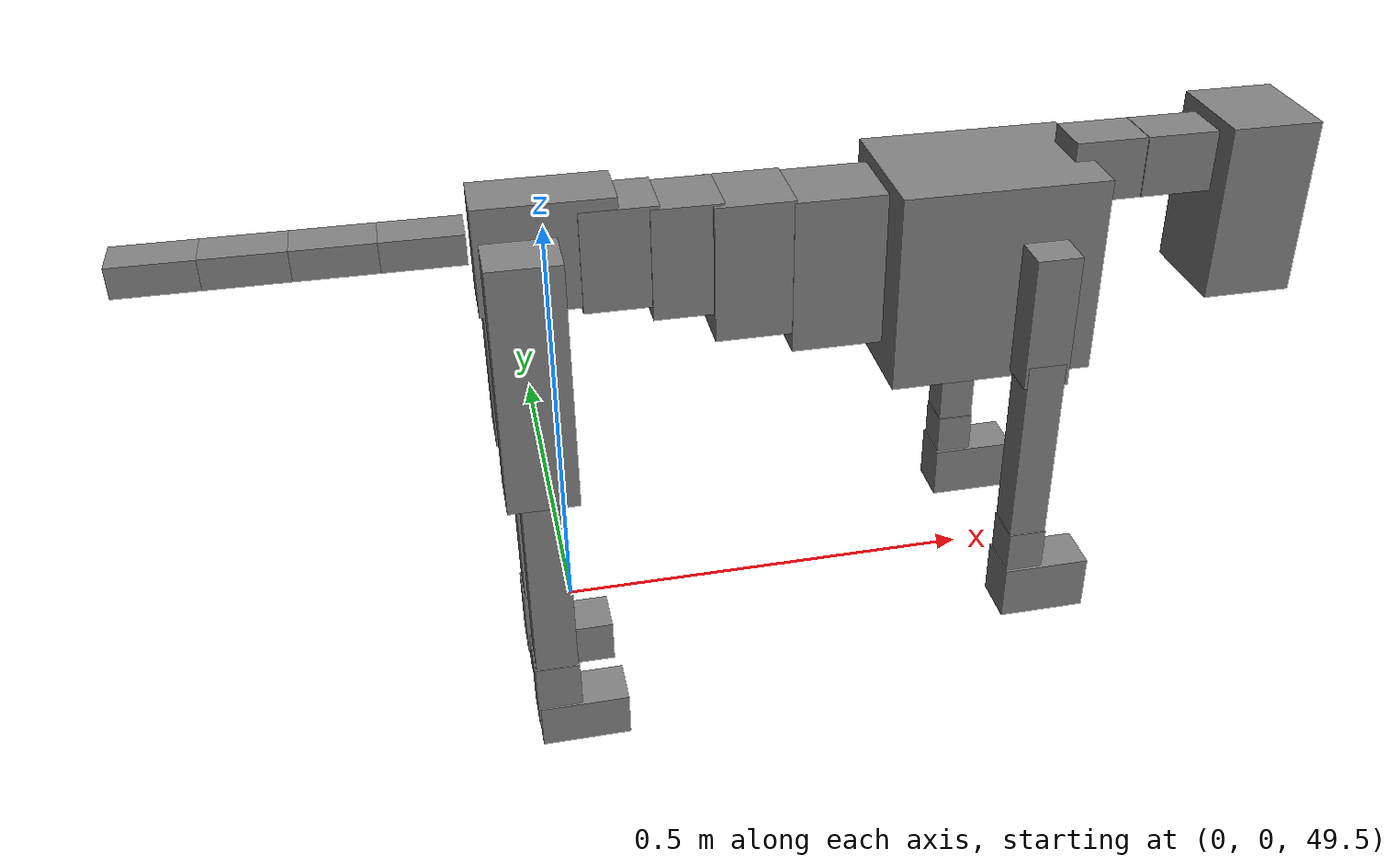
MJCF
<mujoco model="dog">

    <default>
        <joint armature="0.02" stiffness="1" damping="0.2" limited="true"/>
        <geom condim="3" friction="1 0.05 0.05" margin="0.01"/>
        <motor ctrllimited="true" ctrlrange="-1.0 1.0" forcelimited="true" gear="50"/>
    </default>

    <compiler inertiafromgeom="true" angle="radian"/>

    <option timestep="0.016" iterations="50" tolerance="1e-10" solver="Newton" jacobian="dense" cone="pyramidal"/>

    <size nconmax="20000" njmax="60000" nstack="5000000"/>
    <visual>
        <map force="0.1" zfar="30"/>
        <rgba haze="0.15 0.25 0.35 1"/>
        <quality shadowsize="2048"/>
        <global offwidth="800" offheight="800"/>
    </visual>

    <asset>
        <texture type="skybox" builtin="gradient" rgb1="0.3 0.5 0.7" rgb2="0 0 0" width="512" height="512"/>
        <texture name="texplane" type="2d" builtin="checker" rgb1=".2 .3 .4" rgb2=".1 0.15 0.2" width="512" height="512"
                 mark="cross" markrgb=".8 .8 .8"/>
        <texture name="texgeom" type="cube" builtin="flat" mark="cross" width="127" height="1278" rgb1="0.8 0.6 0.4"
                 rgb2="0.8 0.6 0.4" markrgb="1 1 1" random="0.01"/>

        <material name="matplane" reflectance="0.3" texture="texplane" texrepeat="1 1" texuniform="true"/>
        <material name="matgeom" texture="texgeom" texuniform="true" rgba="0.8 0.6 .4 1"/>
    </asset>

    <worldbody>
        <geom name="floor" pos="0 0 0" size="0 0 .25" type="plane" material="matplane" condim="3"/>

        <light directional="false" diffuse=".2 .2 .2" specular="0 0 0" pos="0 0 5" dir="0 0 -1" castshadow="false"/>
        <light mode="targetbodycom" target="torso" directional="false" diffuse=".8 .8 .8" specular="0.3 0.3 0.3"
               pos="0 0 4.0" dir="0 0 -1"/>

        <body name="root" pos="0 0 50">
            <freejoint name="root_1"/>
            <geom type="box" pos="0 0 -0.02" size="0.0774  0.0358  0.063" density="2030"/>

            <body name="spine1" pos="0.054 0 0">
                <joint name="spine1_y" axis="0 1 0" range="0 0.7" limited="true"/>
                <geom type="box" pos="0.02375 0 -0.03" size="0.04375  0.0375  0.05985" density="2030"/>

                <body name="spine2" pos="0.0612 0 0">
                    <joint name="spine2_y" axis="0 1 0" range="-0.15 0.15" limited="true"/>
                    <geom type="box" pos="0.03555  0  -0.04" size="0.04055  0.039  0.06615" density="2030"/>

                    <body name="spine3" pos="0.0730 0 0">
                        <joint name="spine3_y" axis="0 1 0" range="-0.15 0.15" limited="true"/>
                        <geom type="box" pos="0.03555  0  -0.057" size="0.04555  0.0445  0.081" density="2030"/>

                        <body name="spine4" pos="0.0780 0 0">
                            <joint name="spine4_y" axis="0 1 0" range="-0.15 0.15" limited="true"/>
                            <geom type="box" pos="0.05265  0  -0.07" size="0.05265  0.045  0.09135" density="2030"/>

                            <body name="torso" pos="0.1082 0 0">
                                <joint name="torso_y" axis="0 1 0" range="-0.15 0.15" limited="true"/>
                                <geom type="box" pos="0.11925  0  -0.085" size="0.11925  0.085  0.11745"
                                      density="2030"/>

                                <body name="neck1" pos="0.2160  0   0.0180">
                                    <joint name="neck1_y" axis="0 1 0" range="-1.2  -1" limited="true"/>
                                    <geom type="box" pos="0.0423  0  0" size="0.0423  0.03  0.036" density="2325"/>

                                    <body name="neck2" pos="0.0853  0  0">
                                        <joint name="neck2_y" axis="0 1 0" range="0.1  0" limited="true"/>
                                        <geom type="box" pos="0.0423  0  0" size="0.0423  0.03  0.036" density="2325"/>

                                        <body name="head" pos="0.0853  0  0">
                                            <joint name="head_y" axis="0 1 0" range="-0.3  -0.2" limited="true"/>
                                            <geom type="box" pos="0.0531  0  -0.055" size="0.0531  0.06  0.1044"
                                                  density="4030"/>

                                        </body>
                                    </body>
                                </body>

                                <body name="front_shoulder" pos="0.156  0   -0.0480">
                                    <joint name="front_shoulder_y" axis="0 1 0" range="-1 1.5" limited="true"/>
                                    <geom type="box" pos="0 0.13 -0.0521" size="0.0257  0.0220  0.0788" density="1158"/>
                                    <geom type="box" pos="0 -0.13 -0.0521" size="0.0257  0.0220  0.0788"
                                          density="1158"/>

                                    <body name="front_elbow" pos="0  0  -0.1043">
                                        <joint name="front_elbow_y" axis="0 1 0" range="-2 0" limited="true"/>
                                        <geom type="box" pos="0 0.13 -0.1211" size="0.0219  0.0223  0.1211"
                                              density="1081"/>
                                        <geom type="box" pos="0 -0.13 -0.1211" size="0.0219  0.0223  0.1211"
                                              density="1081"/>

                                        <body name="front_wrist" pos="0  0  -0.2422">
                                            <joint name="front_wrist_y" axis="0 1 0" range="-0.2 0" limited="true"/>
                                            <geom type="box" pos="0 0.13 -0.0263" size="0.0221  0.0245  0.0394"
                                                  density="1664"/>
                                            <geom type="box" pos="0 -0.13 -0.0263" size="0.0221  0.0245  0.0394"
                                                  density="1664"/>

                                            <body name="front_finger_end" pos="0  0  -0.0526">
                                                <joint name="front_finger_y" axis="0 1 0" range="-0.4 1"
                                                       limited="true"/>
                                                <geom type="box" pos="0.0282  0.13  -0.0181"
                                                      size="0.0516  0.0282  0.0331" density="1515"/>
                                                <geom type="box" pos="0.0282  -0.13  -0.0181"
                                                      size="0.0516  0.0282  0.0331" density="1515"/>

                                            </body>

                                        </body>
                                    </body>
                                </body>

                            </body>
                        </body>
                    </body>
                </body>
            </body>

            <body name="back_hip" pos="-0.03 0 -0.018">
                <joint name="back_hip_y" axis="0 1 0" range="-1.5 0.3" limited="true"/>
                <geom type="box" pos="0 0.07 -0.1278" size="0.0412  0.0323  0.1506" density="1154"/>
                <geom type="box" pos="0 -0.07 -0.1278" size="0.0412  0.0323  0.1506" density="1154"/>

                <body name="back_knee" pos="0  0  -0.2556">
                    <joint name="back_knee_y" axis="0 1 0" range="0 2.8" limited="true"/>
                    <geom type="box" pos="0 0.07 -0.1366" size="0.0252  0.0248  0.1521" density="1227"/>
                    <geom type="box" pos="0 -0.07 -0.1366" size="0.0252  0.0248  0.1521" density="1227"/>

                    <body name="back_ankle" pos="0  0  -0.2732">
                        <joint name="back_ankle_y" axis="0 1 0" range="-2.2 0" limited="true"/>
                        <geom type="box" pos="0 0.07 -0.0324" size="0.0270  0.0270  0.0436" density="1284"/>
                        <geom type="box" pos="0 -0.07 -0.0324" size="0.0270  0.0270  0.0436" density="1284"/>

                        <body name="back_toe_end" pos="0  0  -0.0647">
                            <joint name="back_toe_y" axis="0 1 0" range="-0.4 1" limited="true"/>
                            <geom type="box" pos="0.0297  0.07  -0.0133" size="0.0544  0.0297  0.0283" density="1515"/>
                            <geom type="box" pos="0.0297  -0.07  -0.0133" size="0.0544  0.0297  0.0283" density="1515"/>

                        </body>
                    </body>
                </body>
            </body>

            <body name="tail1" pos="-0.074 0 -0.006">
                <joint name="tail1_y" axis="0 1 0" range="-0.2 0.2" limited="true"/>
                <geom type="box" pos="-0.0536  0  0" size="0.045  0.025  0.0175" density="1587"/>

                <body name="tail2" pos="-0.09 0 0">
                    <joint name="tail2_y" axis="0 1 0" range="-0.2 0.2" limited="true"/>
                    <geom type="box" pos="-0.0536  0  0" size="0.045  0.025  0.0175" density="1587"/>

                    <body name="tail3" pos="-0.09 0 0">
                        <joint name="tail3_y" axis="0 1 0" range="-0.2 0.2" limited="true"/>
                        <geom type="box" pos="-0.0536  0  0" size="0.045  0.025  0.0175" density="1587"/>

                        <body name="tail4" pos="-0.09 0 0">
                            <joint name="tail4_y" axis="0 1 0" range="-0.2 0.2" limited="true"/>
                            <geom type="box" pos="-0.0536  0  0" size="0.045  0.025  0.0175" density="1587"/>

                        </body>
                    </body>
                </body>
            </body>
        </body>
    </worldbody>

    <actuator>
        <motor joint="spine1_y" forcerange="-150 150     "/>
        <motor joint="spine2_y" forcerange="-150 150     "/>
        <motor joint="spine3_y" forcerange="-150 150     "/>
        <motor joint="spine4_y" forcerange="-150 150     "/>
        <motor joint="torso_y" forcerange="-150 150     "/>
        <motor joint="neck1_y" forcerange="-100 100       "/>
        <motor joint="neck2_y" forcerange="-100 100       "/>
        <motor joint="head_y" forcerange="-150 150       "/>
        <motor joint="front_shoulder_y" forcerange="-122.90 123.54"/>
        <motor joint="front_elbow_y" forcerange="-155.74 106.80"/>
        <motor joint="front_wrist_y" forcerange="-104.49 91.57"/>
        <motor joint="front_finger_y" forcerange="-23.70 86.43"/>
        <motor joint="back_hip_y" forcerange="-327.16 303.66"/>
        <motor joint="back_knee_y" forcerange="-332.12 229.21"/>
        <motor joint="back_angle_y" forcerange="-103.77 227.82"/>
        <motor joint="back_toe_y" forcerange="-86.88 70.52"/>
        <motor joint="tail1_y" forcerange="-50 50     "/>
        <motor joint="tail2_y" forcerange="-50 50     "/>
        <motor joint="tail3_y" forcerange="-50 50     "/>
        <motor joint="tail4_y" forcerange="-50 50     "/>
    </actuator>
</mujoco>
